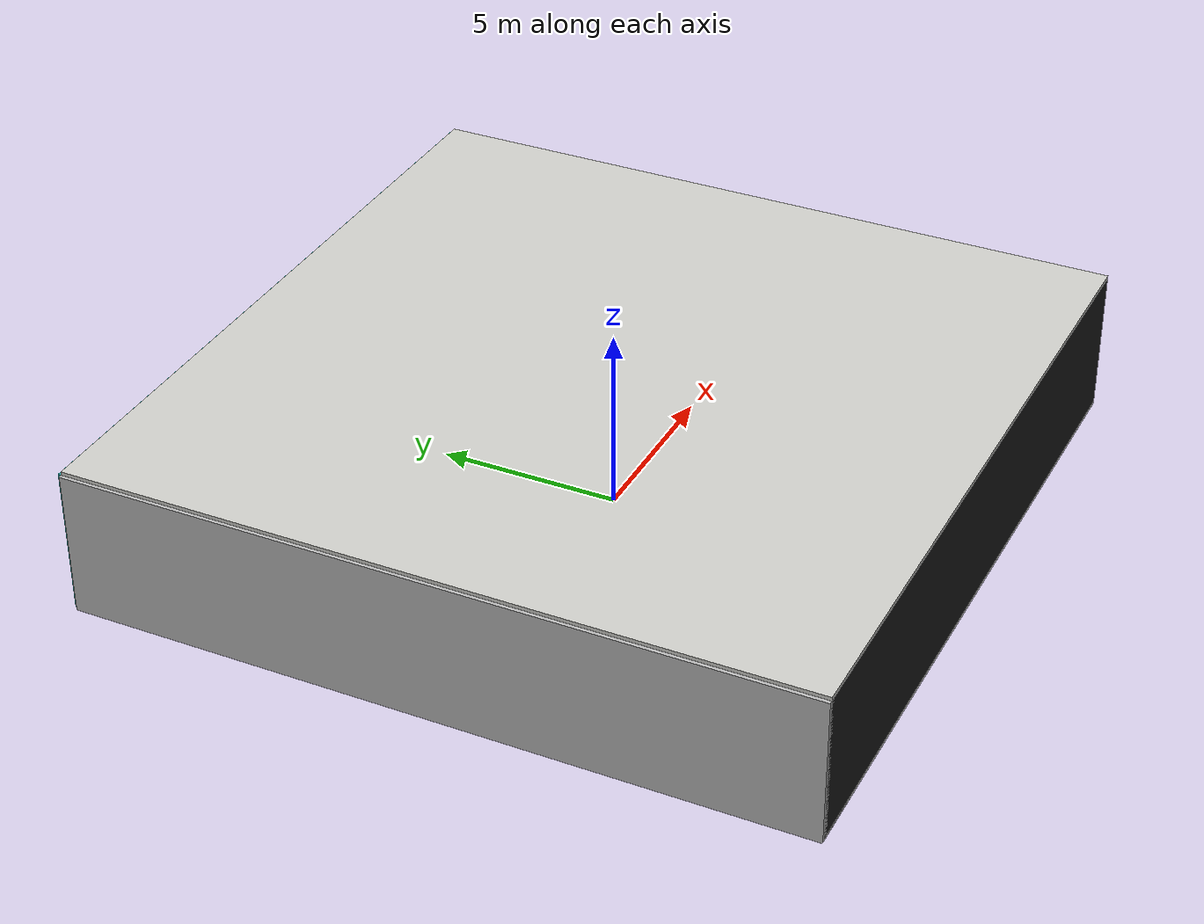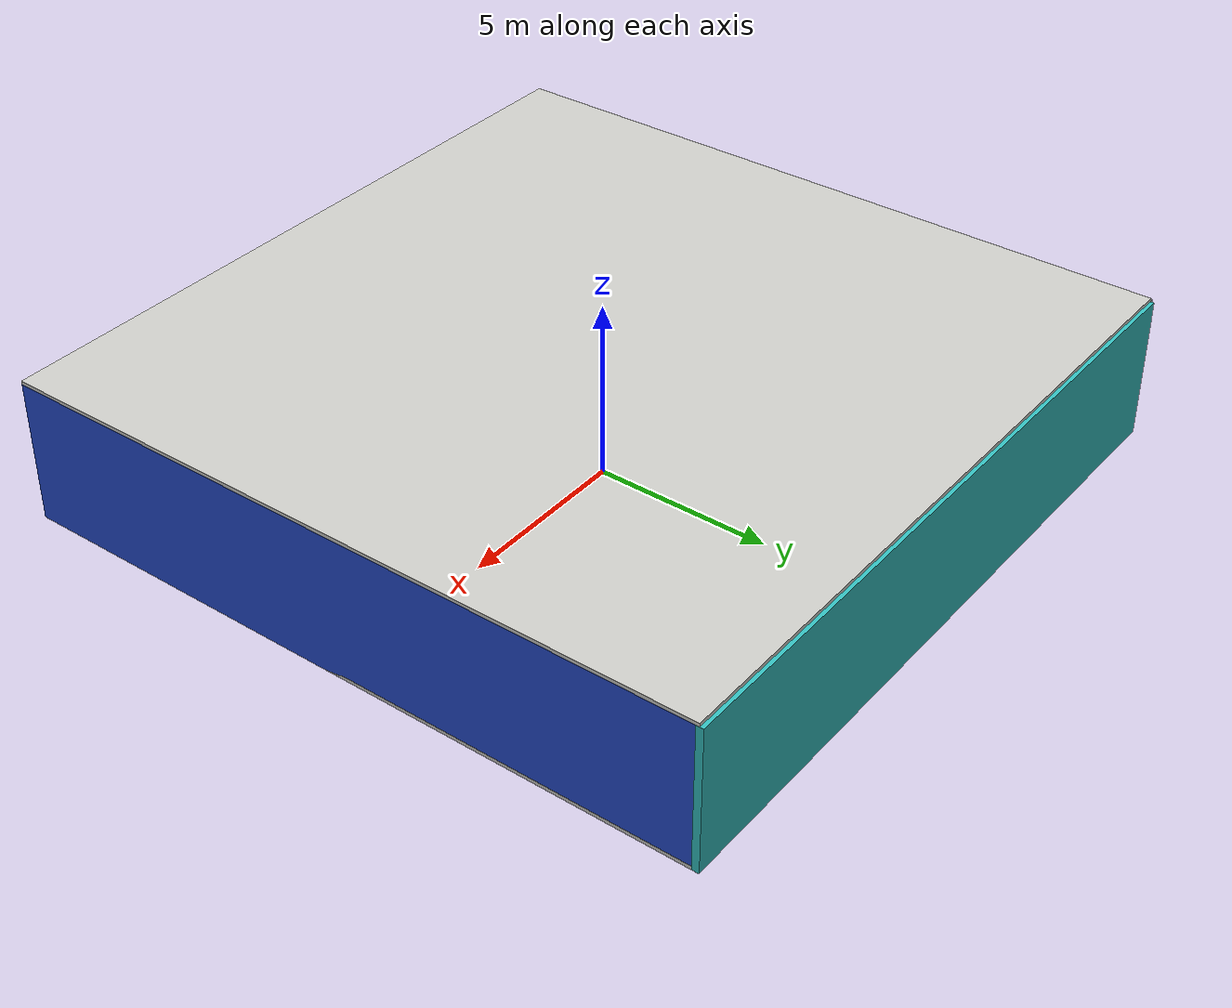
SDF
<sdf version="1.4">
 <world name="default">
  <physics type="ode">
   <max_step_size>0.001</max_step_size>
   <real_time_factor>1</real_time_factor>
   <real_time_update_rate>1000</real_time_update_rate>
   <gravity>0 0 -9.8</gravity>
  </physics>
  <scene><ambient>0.4 0.4 0.4 1</ambient><background>0.7 0.7 0.7 1</background><shadows>1</shadows></scene>
  <model name="Surrounding">
   <static>1</static>
   <link name="Ceiling">
    <collision name="Ceiling_Collision"><geometry><box><size>20 20 0.1</size></box></geometry></collision>
    <visual name="Ceiling_Visual">
     <geometry><box><size>20 20 0.1</size></box></geometry>
     <material>
      <script><uri>file://media/materials/scripts/gazebo.material</uri><name>Gazebo/CeilingTiled</name></script>
     </material>
    </visual>
    <pose>0 0 4.05 0 0 0</pose>
   </link>
   <link name="Wall_South">
    <collision name="Wall_South_Collision">
     <geometry><box><size>20 0 4</size></box></geometry>
     <pose>0 0 2 0 -0 0</pose>
    </collision>
    <visual name="Wall_South_Visual">
     <pose>0 0 2 0 -0 0</pose>
     <geometry><box><size>20 0 4</size></box></geometry>
     <material>
      <script><uri>file://media/materials/scripts/gazebo.material</uri><name>Gazebo/Black</name></script>
     </material>
    </visual>
    <velocity_decay><linear>0</linear><angular>0</angular></velocity_decay>
    <pose>0 -10 0 0 -0 0</pose>
   </link>
   <link name="Wall_East">
    <collision name="Wall_21_Collision">
     <geometry><box><size>20 0 4</size></box></geometry>
     <pose>0 0 2 0 -0 0</pose>
    </collision>
    <visual name="Wall_21_Visual">
     <pose>0 0 2 0 -0 0</pose>
     <geometry><box><size>20 0 4</size></box></geometry>
     <material>
      <script><uri>file://media/materials/scripts/gazebo.material</uri><name>Gazebo/BlueLaser</name></script>
     </material>
    </visual>
    <velocity_decay><linear>0</linear><angular>0</angular></velocity_decay>
    <pose>10 0 0 0 -0 1.5708</pose>
   </link>
   <link name="Wall_North">
    <collision name="Wall_22_Collision">
     <geometry><box><size>20 0.2 4</size></box></geometry>
     <pose>0 0 2 0 -0 0</pose>
    </collision>
    <visual name="Wall_22_Visual">
     <pose>0 0 2 0 -0 0</pose>
     <geometry><box><size>20 0.2 4</size></box></geometry>
     <material>
      <script><uri>file://media/materials/scripts/gazebo.material</uri><name>Gazebo/Turquoise</name></script>
     </material>
    </visual>
    <velocity_decay><linear>0</linear><angular>0</angular></velocity_decay>
    <pose>0 10 0 0 -0 0</pose>
   </link>
   <link name="Wall_West">
    <collision name="Wall_23_Collision">
     <geometry><box><size>20 0.2 4</size></box></geometry>
     <pose>0 0 2 0 -0 0</pose>
    </collision>
    <visual name="Wall_23_Visual">
     <pose>0 0 2 0 -0 0</pose>
     <geometry><box><size>20 0.2 4</size></box></geometry>
     <material>
      <script><uri>file://media/materials/scripts/gazebo.material</uri><name>Gazebo/LightOn</name></script>
     </material>
    </visual>
    <velocity_decay><linear>0</linear><angular>0</angular></velocity_decay>
    <pose>-10 0 0 0 0 -1.5708</pose>
   </link>
   <link name="Ground_link">
    <collision name="collision">
     <pose>0 0 .05 0 -0 0</pose>
     <geometry><box><size>20 20 0.1</size></box></geometry>
    </collision>
    <visual name="visual">
     <pose>0 0 .05 0 -0 0</pose>
     <geometry><box><size>20 20 0.1</size></box></geometry>
     <material>
      <script><uri>file://media/materials/scripts/gazebo.material</uri><name>Gazebo/CeilingTiled</name></script>
     </material>
    </visual>
   </link>
   <static>1</static>
  </model>
  <spherical_coordinates>
   <surface_model>EARTH_WGS84</surface_model>
   <latitude_deg>0</latitude_deg>
   <longitude_deg>0</longitude_deg>
   <elevation>0</elevation>
   <heading_deg>0</heading_deg>
  </spherical_coordinates>
  <light name="lightball_0" type="diffuse">
   <diffuse>0.8 0.8 0.8 1</diffuse>
   <specular>0.2 0.2 0.2 1</specular>
   <attenuation>
    <range>100</range>
    <constant>0.7</constant>
    <linear>0.01</linear>
    <quadratic>0.001</quadratic>
   </attenuation>
   <direction>-0.5 0.1 -0.9</direction>
   <pose>-8.81957699812 -9.4466217436 3.13583007797 0 0 0</pose>
  </light>
  <light name="lightball_1" type="diffuse">
   <diffuse>0.8 0.8 0.8 1</diffuse>
   <specular>0.2 0.2 0.2 1</specular>
   <attenuation>
    <range>100</range>
    <constant>0.7</constant>
    <linear>0.01</linear>
    <quadratic>0.001</quadratic>
   </attenuation>
   <direction>-0.5 0.1 -0.9</direction>
   <pose>4.72777758857 -0.971200089547 3.67717972843 0 0 0</pose>
  </light>
  <light name="lightball_2" type="diffuse">
   <diffuse>0.8 0.8 0.8 1</diffuse>
   <specular>0.2 0.2 0.2 1</specular>
   <attenuation>
    <range>100</range>
    <constant>0.7</constant>
    <linear>0.01</linear>
    <quadratic>0.001</quadratic>
   </attenuation>
   <direction>-0.5 0.1 -0.9</direction>
   <pose>2.70256738977 -8.69749201604 1.99530485513 0 0 0</pose>
  </light>
  <include>
   <uri>model://construction_cone</uri>
   <pose>-3.83889139121 -7.95501344485 0 0 0 0.505330678781</pose>
  </include>
  <include>
   <uri>model://construction_cone</uri>
   <pose>-4.23083913577 6.73442456535 0 0 0 1.00186308883</pose>
  </include>
  <include>
   <uri>model://textured_shapes</uri>
   <pose>-1.99445045922 -4.62578843943 0 0 0 1.63799794539</pose>
  </include>
  <include>
   <uri>model://construction_cone</uri>
   <pose>-1.71070913173 4.88155216723 0 0 0 0.855589865421</pose>
  </include>
  <include>
   <uri>model://textured_shapes</uri>
   <pose>1.46305454883 -7.37172906144 0 0 0 1.00540679714</pose>
  </include>
  <include>
   <uri>model://textured_shapes</uri>
   <pose>1.95673086125 2.28561791483 0 0 0 0.217936201679</pose>
  </include>
  <include>
   <uri>model://robocup_3Dsim_goal</uri>
   <pose>1.30886510581 7.52021605301 0 0 0 1.06419162614</pose>
  </include>
  <include>
   <uri>model://robocup_3Dsim_goal</uri>
   <pose>8.12277969053 -1.68460243914 0 0 0 3.11448297073</pose>
  </include>
 </world>
</sdf>

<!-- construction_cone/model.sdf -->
<sdf version="1.5">
  <model name="Construction Cone">
    <link name="link">
      <collision name="collision">
        <geometry>
          <mesh>
            <scale>10 10 10</scale>
            <uri>file://isr-testbed/construction_cone/meshes/construction_cone.dae</uri>
          </mesh>
        </geometry>
      </collision>
      <visual name="visual">
        <geometry>
          <mesh>
            <scale>10 10 10</scale>
            <uri>file://isr-testbed/construction_cone/meshes/construction_cone.dae</uri>
          </mesh>
        </geometry>
      </visual>
    </link>
  </model>
</sdf>

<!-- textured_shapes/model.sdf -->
<sdf version="1.6">
  <model name="textured_shapes">
    <pose>0 0 0.5 0 0 0</pose>
    <link name="box">
      <pose>0 -1.5 0 0 0 0</pose>
      <collision name="collision">
        <geometry>
          <box>
            <size>1 1 1</size>
          </box>
        </geometry>
      </collision>
      <visual name="visual">
        <geometry>
          <box>
            <size>1 1 1</size>
          </box>
        </geometry>
        <material>
          <script>
            <uri>model://../model_source/models/textured_shapes/materials/scripts</uri>
            <uri>model://../model_source/models/textured_shapes/materials/textures</uri>
            <name>TexturedShape/Squares</name>
          </script>
        </material>
      </visual>
    </link>
    <link name="sphere">
      <collision name="collision">
        <geometry>
          <sphere>
            <radius>0.5</radius>
          </sphere>
        </geometry>
      </collision>
      <visual name="visual">
        <geometry>
          <sphere>
            <radius>0.5</radius>
          </sphere>
        </geometry>
        <material>
          <script>
            <uri>model://../model_source/models/textured_shapes/materials/scripts</uri>
            <uri>model://../model_source/models/textured_shapes/materials/textures</uri>
            <name>TexturedShape/Squares</name>
          </script>
        </material>
      </visual>
    </link>
    <link name="cylinder">
      <pose>0 1.5 0 0 0 0</pose>
      <collision name="collision">
        <geometry>
          <cylinder>
            <radius>0.5</radius>
            <length>1</length>
          </cylinder>
        </geometry>
      </collision>
      <visual name="visual">
        <geometry>
          <cylinder>
            <radius>0.5</radius>
            <length>1</length>
          </cylinder>
        </geometry>
        <material>
          <script>
            <uri>model://../model_source/models/textured_shapes/materials/scripts</uri>
            <uri>model://../model_source/models/textured_shapes/materials/textures</uri>
            <name>TexturedShape/Squares</name>
          </script>
        </material>
      </visual>
    </link>
  </model>
</sdf>

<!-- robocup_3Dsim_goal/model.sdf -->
<sdf version="1.5">
  <model name="robocup_3d_goal">
    <static>true</static>
    <link name="left_post">
      <pose>0 1.05 0.45 0 0 0</pose>
      <collision name="collision">
        <geometry>
          <cylinder>
            <radius>0.05</radius>
            <length>0.9</length>
          </cylinder>
        </geometry>
      </collision>
      <visual name="visual">
        <geometry>
          <cylinder>
            <radius>0.05</radius>
            <length>0.9</length>
          </cylinder>
        </geometry>
        <material>
          <script>
            <uri>file://media/materials/scripts/gazebo.material</uri>
            <name>Gazebo/ZincYellow</name>
          </script>
        </material>
      </visual>
    </link>
    <link name="left_support_horiz_lower">
      <pose>0.30 1.05 0.01 0 0 0</pose>
      <collision name="collision">
        <geometry>
          <box>
            <size>0.50 0.02 0.02</size>
          </box>
        </geometry>
      </collision>
      <visual name="visual">
        <geometry>
          <box>
            <size>0.50 0.02 0.02</size>
          </box>
        </geometry>
        <material>
          <script>
            <uri>file://media/materials/scripts/gazebo.material</uri>
            <name>Gazebo/White</name>
          </script>
        </material>
      </visual>
    </link>
    <link name="left_support_horiz_upper">
      <pose>0.30 1.05 0.79 0 0 0</pose>
      <collision name="collision">
        <geometry>
          <box>
            <size>0.50 0.02 0.02</size>
          </box>
        </geometry>
      </collision>
      <visual name="visual">
        <geometry>
          <box>
            <size>0.50 0.02 0.02</size>
          </box>
        </geometry>
        <material>
          <script>
            <uri>file://media/materials/scripts/gazebo.material</uri>
            <name>Gazebo/White</name>
          </script>
        </material>
      </visual>
    </link>
    <link name="left_support_vertical">
      <pose>0.56 1.05 0.4 0 1.5708 0</pose>
      <collision name="collision">
        <geometry>
          <box>
            <size>0.80 0.02 0.02</size>
          </box>
        </geometry>
      </collision>
      <visual name="visual">
        <geometry>
          <box>
            <size>0.80 0.02 0.02</size>
          </box>
        </geometry>
        <material>
          <script>
            <uri>file://media/materials/scripts/gazebo.material</uri>
            <name>Gazebo/White</name>
          </script>
        </material>
      </visual>
    </link>
    <link name="right_support_horiz_lower">
      <pose>0.30 -1.05 0.01 0 0 0</pose>
      <collision name="collision">
        <geometry>
          <box>
            <size>0.50 0.02 0.02</size>
          </box>
        </geometry>
      </collision>
      <visual name="visual">
        <geometry>
          <box>
            <size>0.50 0.02 0.02</size>
          </box>
        </geometry>
        <material>
          <script>
            <uri>file://media/materials/scripts/gazebo.material</uri>
            <name>Gazebo/White</name>
          </script>
        </material>
      </visual>
    </link>
    <link name="right_support_horiz_upper">
      <pose>0.30 -1.05 0.79 0 0 0</pose>
      <collision name="collision">
        <geometry>
          <box>
            <size>0.50 0.02 0.02</size>
          </box>
        </geometry>
      </collision>
      <visual name="visual">
        <geometry>
          <box>
            <size>0.50 0.02 0.02</size>
          </box>
        </geometry>
        <material>
          <script>
            <uri>file://media/materials/scripts/gazebo.material</uri>
            <name>Gazebo/White</name>
          </script>
        </material>
      </visual>
    </link>
    <link name="right_support_vertical">
      <pose>0.56 -1.05 0.4 0 1.5708 0</pose>
      <collision name="collision">
        <geometry>
          <box>
            <size>0.80 0.02 0.02</size>
          </box>
        </geometry>
      </collision>
      <visual name="visual">
        <geometry>
          <box>
            <size>0.80 0.02 0.02</size>
          </box>
        </geometry>
        <material>
          <script>
            <uri>file://media/materials/scripts/gazebo.material</uri>
            <name>Gazebo/White</name>
          </script>
        </material>
      </visual>
    </link>
    <link name="center_support_horiz_lower">
      <pose>0.56 0 0.01 0 1.5708 0</pose>
      <collision name="collision">
        <geometry>
          <box>
            <size>0.02 2.08 0.02</size>
          </box>
        </geometry>
      </collision>
      <visual name="visual">
        <geometry>
          <box>
            <size>0.02 2.08 0.02</size>
          </box>
        </geometry>
        <material>
          <script>
            <uri>file://media/materials/scripts/gazebo.material</uri>
            <name>Gazebo/White</name>
          </script>
        </material>
      </visual>
    </link>
    <link name="center_support_horiz_upper">
      <pose>0.56 0 0.79 0 1.5708 0</pose>
      <collision name="collision">
        <geometry>
          <box>
            <size>0.02 2.08 0.02</size>
          </box>
        </geometry>
      </collision>
      <visual name="visual">
        <geometry>
          <box>
            <size>0.02 2.08 0.02</size>
          </box>
        </geometry>
        <material>
          <script>
            <uri>file://media/materials/scripts/gazebo.material</uri>
            <name>Gazebo/White</name>
          </script>
        </material>
      </visual>
    </link>
    <link name="right_post">
      <pose>0 -1.05 0.45 0 0 0</pose>
      <collision name="collision">
        <geometry>
          <cylinder>
            <radius>0.05</radius>
            <length>0.9</length>
          </cylinder>
        </geometry>
      </collision>
      <visual name="visual">
        <geometry>
          <cylinder>
            <radius>0.05</radius>
            <length>0.9</length>
          </cylinder>
        </geometry>
        <material>
          <script>
            <uri>file://media/materials/scripts/gazebo.material</uri>
            <name>Gazebo/ZincYellow</name>
          </script>
        </material>
      </visual>
    </link>
    <link name="crossbar">
      <pose>0 0 0.85 1.57 1.57 0</pose>
      <collision name="collision">
        <geometry>
          <cylinder>
            <radius>0.05</radius>
            <length>2.0</length>
          </cylinder>
        </geometry>
      </collision>
      <visual name="visual">
        <geometry>
          <cylinder>
            <radius>0.05</radius>
            <length>2.0</length>
          </cylinder>
        </geometry>
        <material>
          <script>
            <uri>file://media/materials/scripts/gazebo.material</uri>
            <name>Gazebo/ZincYellow</name>
          </script>
        </material>
      </visual>
    </link>
    <link name="center_net">
      <pose>0.56 0 0.40 0 0 0</pose>
      <collision name="collision">
        <geometry>
          <box>
            <size>0.01 2.1 0.80</size>
          </box>
        </geometry>
      </collision>
      <visual name="visual">
        <geometry>
          <box>
            <size>0.01 2.1 0.80</size>
          </box>
        </geometry>
        <material>
          <script>
            <uri>model://../model_source/models/robocup09_spl_field/materials/scripts/</uri>
            <uri>model://../model_source/models/robocup09_spl_field/materials/textures/</uri>
            <name>RoboCup/Net</name>
          </script>
        </material>
      </visual>
    </link>
    <link name="left_net">
      <pose>0.30 1.05 0.40 0 0 0</pose>
      <collision name="collision">
        <geometry>
          <box>
            <size>0.50 0.01 0.76</size>
          </box>
        </geometry>
      </collision>
      <visual name="visual">
        <geometry>
          <box>
            <size>0.50 0.01 0.76</size>
          </box>
        </geometry>
        <material>
          <script>
            <uri>model://../model_source/models/robocup09_spl_field/materials/scripts/</uri>
            <uri>model://../model_source/models/robocup09_spl_field/materials/textures/</uri>
            <name>RoboCup/Net</name>
          </script>
        </material>
      </visual>
    </link>
    <link name="right_net">
      <pose>0.30 -1.05 0.40 0 0 0</pose>
      <collision name="collision">
        <geometry>
          <box>
            <size>0.50 0.01 0.76</size>
          </box>
        </geometry>
      </collision>
      <visual name="visual">
        <geometry>
          <box>
            <size>0.50 0.01 0.76</size>
          </box>
        </geometry>
        <material>
          <script>
            <uri>model://../model_source/models/robocup09_spl_field/materials/scripts/</uri>
            <uri>model://../model_source/models/robocup09_spl_field/materials/textures/</uri>
            <name>RoboCup/Net</name>
          </script>
        </material>
      </visual>
    </link>
  </model>
</sdf>
